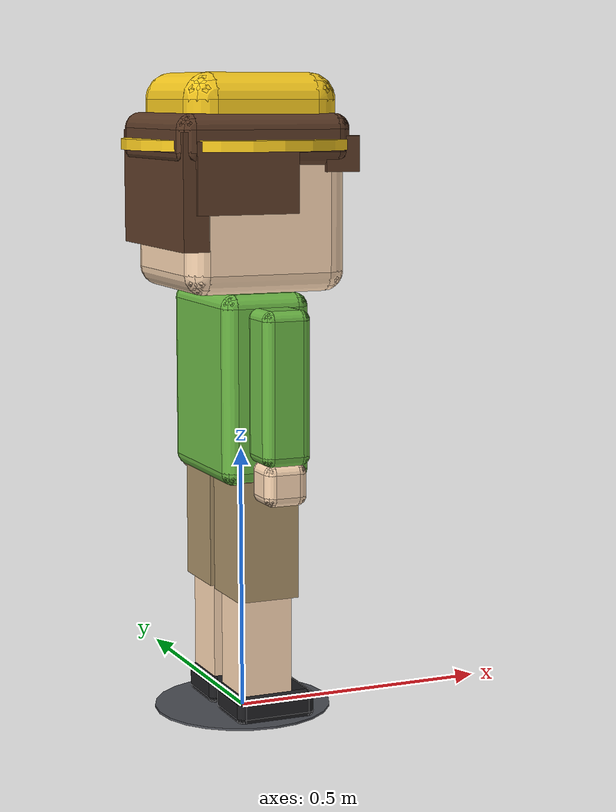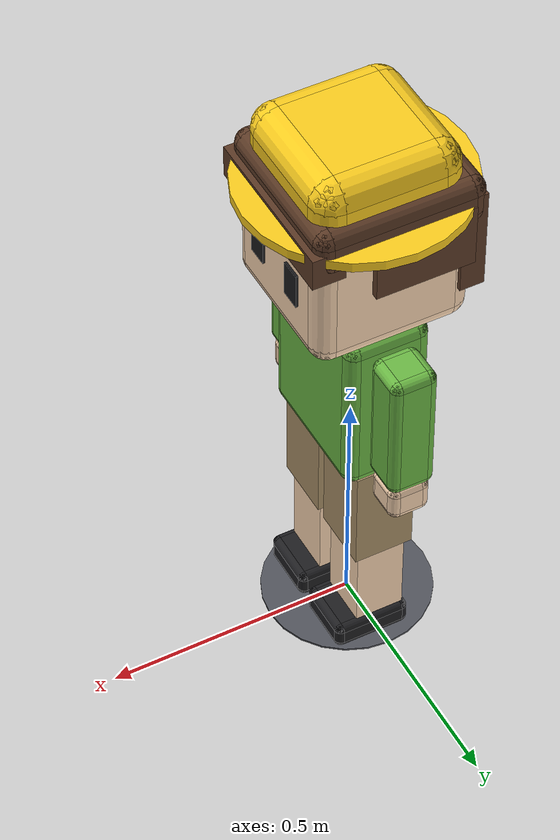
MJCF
<mujoco model="hakoniwa_person_child">
  <compiler angle="degree"/>
  <worldbody>
    <!-- 子ども: a stick that slides and turns; limbs are animated -->
    <body name="person" pos="0 0 0" gravcomp="1">
      <joint name="slide_x_joint" type="slide" axis="1 0 0" damping="20"/>
      <joint name="slide_y_joint" type="slide" axis="0 1 0" damping="20"/>
      <joint name="slide_z_joint" type="slide" axis="0 0 1"/>
      <joint name="turn_joint" type="hinge" axis="0 0 1" damping="5"/>
      <geom name="person_collision" type="capsule" fromto="0 0 0.474 0 0 0.952" size="0.154" mass="20.58" group="3" rgba="0.2 0.6 1 0"/>
      <!-- A round shadow under the feet (the stick's own part in the viewer) -->
      <geom name="shadow_visual" type="cylinder" pos="0 0 0.004" size="0.168 0.002" rgba="0.32 0.33 0.36 1" contype="0" conaffinity="0" density="0" group="1"/>
      <!-- The torso and the head are the stick's own (they do not move on it) -->
      <geom name="torso_x_visual" type="box" pos="0 0 0.63" size="0.084 0.1155 0.1505" rgba="0.42 0.72 0.27 1" contype="0" conaffinity="0" density="0" group="1"/>
      <geom name="torso_y_visual" type="box" pos="0 0 0.63" size="0.0595 0.14 0.1505" rgba="0.42 0.72 0.27 1" contype="0" conaffinity="0" density="0" group="1"/>
      <geom name="torso_z_visual" type="box" pos="0 0 0.63" size="0.0595 0.1155 0.175" rgba="0.42 0.72 0.27 1" contype="0" conaffinity="0" density="0" group="1"/>
      <geom name="torso_edge0_visual" type="capsule" fromto="-0.0595 -0.1155 0.4795 0.0595 -0.1155 0.4795" size="0.0245" rgba="0.42 0.72 0.27 1" contype="0" conaffinity="0" density="0" group="1"/>
      <geom name="torso_edge1_visual" type="capsule" fromto="-0.0595 -0.1155 0.7805 0.0595 -0.1155 0.7805" size="0.0245" rgba="0.42 0.72 0.27 1" contype="0" conaffinity="0" density="0" group="1"/>
      <geom name="torso_edge2_visual" type="capsule" fromto="-0.0595 0.1155 0.4795 0.0595 0.1155 0.4795" size="0.0245" rgba="0.42 0.72 0.27 1" contype="0" conaffinity="0" density="0" group="1"/>
      <geom name="torso_edge3_visual" type="capsule" fromto="-0.0595 0.1155 0.7805 0.0595 0.1155 0.7805" size="0.0245" rgba="0.42 0.72 0.27 1" contype="0" conaffinity="0" density="0" group="1"/>
      <geom name="torso_edge4_visual" type="capsule" fromto="-0.0595 -0.1155 0.4795 -0.0595 0.1155 0.4795" size="0.0245" rgba="0.42 0.72 0.27 1" contype="0" conaffinity="0" density="0" group="1"/>
      <geom name="torso_edge5_visual" type="capsule" fromto="-0.0595 -0.1155 0.7805 -0.0595 0.1155 0.7805" size="0.0245" rgba="0.42 0.72 0.27 1" contype="0" conaffinity="0" density="0" group="1"/>
      <geom name="torso_edge6_visual" type="capsule" fromto="0.0595 -0.1155 0.4795 0.0595 0.1155 0.4795" size="0.0245" rgba="0.42 0.72 0.27 1" contype="0" conaffinity="0" density="0" group="1"/>
      <geom name="torso_edge7_visual" type="capsule" fromto="0.0595 -0.1155 0.7805 0.0595 0.1155 0.7805" size="0.0245" rgba="0.42 0.72 0.27 1" contype="0" conaffinity="0" density="0" group="1"/>
      <geom name="torso_edge8_visual" type="capsule" fromto="-0.0595 -0.1155 0.4795 -0.0595 -0.1155 0.7805" size="0.0245" rgba="0.42 0.72 0.27 1" contype="0" conaffinity="0" density="0" group="1"/>
      <geom name="torso_edge9_visual" type="capsule" fromto="-0.0595 0.1155 0.4795 -0.0595 0.1155 0.7805" size="0.0245" rgba="0.42 0.72 0.27 1" contype="0" conaffinity="0" density="0" group="1"/>
      <geom name="torso_edge10_visual" type="capsule" fromto="0.0595 -0.1155 0.4795 0.0595 -0.1155 0.7805" size="0.0245" rgba="0.42 0.72 0.27 1" contype="0" conaffinity="0" density="0" group="1"/>
      <geom name="torso_edge11_visual" type="capsule" fromto="0.0595 0.1155 0.4795 0.0595 0.1155 0.7805" size="0.0245" rgba="0.42 0.72 0.27 1" contype="0" conaffinity="0" density="0" group="1"/>
      <geom name="head_x_visual" type="box" pos="0 0 0.951395" size="0.153395 0.117065 0.108991" rgba="0.98 0.84 0.70 1" contype="0" conaffinity="0" density="0" group="1"/>
      <geom name="head_y_visual" type="box" pos="0 0 0.951395" size="0.117065 0.153395 0.108991" rgba="0.98 0.84 0.70 1" contype="0" conaffinity="0" density="0" group="1"/>
      <geom name="head_z_visual" type="box" pos="0 0 0.951395" size="0.117065 0.117065 0.145322" rgba="0.98 0.84 0.70 1" contype="0" conaffinity="0" density="0" group="1"/>
      <geom name="head_edge0_visual" type="capsule" fromto="-0.117065 -0.117065 0.842404 0.117065 -0.117065 0.842404" size="0.0363305" rgba="0.98 0.84 0.70 1" contype="0" conaffinity="0" density="0" group="1"/>
      <geom name="head_edge1_visual" type="capsule" fromto="-0.117065 -0.117065 1.06039 0.117065 -0.117065 1.06039" size="0.0363305" rgba="0.98 0.84 0.70 1" contype="0" conaffinity="0" density="0" group="1"/>
      <geom name="head_edge2_visual" type="capsule" fromto="-0.117065 0.117065 0.842404 0.117065 0.117065 0.842404" size="0.0363305" rgba="0.98 0.84 0.70 1" contype="0" conaffinity="0" density="0" group="1"/>
      <geom name="head_edge3_visual" type="capsule" fromto="-0.117065 0.117065 1.06039 0.117065 0.117065 1.06039" size="0.0363305" rgba="0.98 0.84 0.70 1" contype="0" conaffinity="0" density="0" group="1"/>
      <geom name="head_edge4_visual" type="capsule" fromto="-0.117065 -0.117065 0.842404 -0.117065 0.117065 0.842404" size="0.0363305" rgba="0.98 0.84 0.70 1" contype="0" conaffinity="0" density="0" group="1"/>
      <geom name="head_edge5_visual" type="capsule" fromto="-0.117065 -0.117065 1.06039 -0.117065 0.117065 1.06039" size="0.0363305" rgba="0.98 0.84 0.70 1" contype="0" conaffinity="0" density="0" group="1"/>
      <geom name="head_edge6_visual" type="capsule" fromto="0.117065 -0.117065 0.842404 0.117065 0.117065 0.842404" size="0.0363305" rgba="0.98 0.84 0.70 1" contype="0" conaffinity="0" density="0" group="1"/>
      <geom name="head_edge7_visual" type="capsule" fromto="0.117065 -0.117065 1.06039 0.117065 0.117065 1.06039" size="0.0363305" rgba="0.98 0.84 0.70 1" contype="0" conaffinity="0" density="0" group="1"/>
      <geom name="head_edge8_visual" type="capsule" fromto="-0.117065 -0.117065 0.842404 -0.117065 -0.117065 1.06039" size="0.0363305" rgba="0.98 0.84 0.70 1" contype="0" conaffinity="0" density="0" group="1"/>
      <geom name="head_edge9_visual" type="capsule" fromto="-0.117065 0.117065 0.842404 -0.117065 0.117065 1.06039" size="0.0363305" rgba="0.98 0.84 0.70 1" contype="0" conaffinity="0" density="0" group="1"/>
      <geom name="head_edge10_visual" type="capsule" fromto="0.117065 -0.117065 0.842404 0.117065 -0.117065 1.06039" size="0.0363305" rgba="0.98 0.84 0.70 1" contype="0" conaffinity="0" density="0" group="1"/>
      <geom name="head_edge11_visual" type="capsule" fromto="0.117065 0.117065 0.842404 0.117065 0.117065 1.06039" size="0.0363305" rgba="0.98 0.84 0.70 1" contype="0" conaffinity="0" density="0" group="1"/>
      <geom name="eye_left_visual" type="box" pos="0.15501 0.0605508 0.943322" size="0.00322938 0.020991 0.0363305" rgba="0.10 0.10 0.11 1" contype="0" conaffinity="0" density="0" group="1"/>
      <geom name="eye_right_visual" type="box" pos="0.15501 -0.0605508 0.943322" size="0.00322938 0.020991 0.0363305" rgba="0.10 0.10 0.11 1" contype="0" conaffinity="0" density="0" group="1"/>
      <geom name="hair_top_x_visual" type="box" pos="-0.00807344 0 1.08057" size="0.165506 0.137249 0.0201836" rgba="0.36 0.23 0.15 1" contype="0" conaffinity="0" density="0" group="1"/>
      <geom name="hair_top_y_visual" type="box" pos="-0.00807344 0 1.08057" size="0.137249 0.165506 0.0201836" rgba="0.36 0.23 0.15 1" contype="0" conaffinity="0" density="0" group="1"/>
      <geom name="hair_top_z_visual" type="box" pos="-0.00807344 0 1.08057" size="0.137249 0.137249 0.0484407" rgba="0.36 0.23 0.15 1" contype="0" conaffinity="0" density="0" group="1"/>
      <geom name="hair_top_edge0_visual" type="capsule" fromto="-0.145322 -0.137249 1.06039 0.129175 -0.137249 1.06039" size="0.0282571" rgba="0.36 0.23 0.15 1" contype="0" conaffinity="0" density="0" group="1"/>
      <geom name="hair_top_edge1_visual" type="capsule" fromto="-0.145322 -0.137249 1.10075 0.129175 -0.137249 1.10075" size="0.0282571" rgba="0.36 0.23 0.15 1" contype="0" conaffinity="0" density="0" group="1"/>
      <geom name="hair_top_edge2_visual" type="capsule" fromto="-0.145322 0.137249 1.06039 0.129175 0.137249 1.06039" size="0.0282571" rgba="0.36 0.23 0.15 1" contype="0" conaffinity="0" density="0" group="1"/>
      <geom name="hair_top_edge3_visual" type="capsule" fromto="-0.145322 0.137249 1.10075 0.129175 0.137249 1.10075" size="0.0282571" rgba="0.36 0.23 0.15 1" contype="0" conaffinity="0" density="0" group="1"/>
      <geom name="hair_top_edge4_visual" type="capsule" fromto="-0.145322 -0.137249 1.06039 -0.145322 0.137249 1.06039" size="0.0282571" rgba="0.36 0.23 0.15 1" contype="0" conaffinity="0" density="0" group="1"/>
      <geom name="hair_top_edge5_visual" type="capsule" fromto="-0.145322 -0.137249 1.10075 -0.145322 0.137249 1.10075" size="0.0282571" rgba="0.36 0.23 0.15 1" contype="0" conaffinity="0" density="0" group="1"/>
      <geom name="hair_top_edge6_visual" type="capsule" fromto="0.129175 -0.137249 1.06039 0.129175 0.137249 1.06039" size="0.0282571" rgba="0.36 0.23 0.15 1" contype="0" conaffinity="0" density="0" group="1"/>
      <geom name="hair_top_edge7_visual" type="capsule" fromto="0.129175 -0.137249 1.10075 0.129175 0.137249 1.10075" size="0.0282571" rgba="0.36 0.23 0.15 1" contype="0" conaffinity="0" density="0" group="1"/>
      <geom name="hair_top_edge8_visual" type="capsule" fromto="-0.145322 -0.137249 1.06039 -0.145322 -0.137249 1.10075" size="0.0282571" rgba="0.36 0.23 0.15 1" contype="0" conaffinity="0" density="0" group="1"/>
      <geom name="hair_top_edge9_visual" type="capsule" fromto="-0.145322 0.137249 1.06039 -0.145322 0.137249 1.10075" size="0.0282571" rgba="0.36 0.23 0.15 1" contype="0" conaffinity="0" density="0" group="1"/>
      <geom name="hair_top_edge10_visual" type="capsule" fromto="0.129175 -0.137249 1.06039 0.129175 -0.137249 1.10075" size="0.0282571" rgba="0.36 0.23 0.15 1" contype="0" conaffinity="0" density="0" group="1"/>
      <geom name="hair_top_edge11_visual" type="capsule" fromto="0.129175 0.137249 1.06039 0.129175 0.137249 1.10075" size="0.0282571" rgba="0.36 0.23 0.15 1" contype="0" conaffinity="0" density="0" group="1"/>
      <geom name="hair_back_visual" type="box" pos="-0.145322 0 0.991763" size="0.0242203 0.161469 0.104955" rgba="0.36 0.23 0.15 1" contype="0" conaffinity="0" density="0" group="1"/>
      <geom name="hair_fringe_visual" type="box" pos="0.137249 0 1.05635" size="0.0322938 0.161469 0.0322938" rgba="0.36 0.23 0.15 1" contype="0" conaffinity="0" density="0" group="1"/>
      <geom name="hair_side_left_visual" type="box" pos="-0.0484407 0.153395 1.01598" size="0.0968813 0.0145322 0.0645876" rgba="0.36 0.23 0.15 1" contype="0" conaffinity="0" density="0" group="1"/>
      <geom name="hair_side_right_visual" type="box" pos="-0.0484407 -0.153395 1.01598" size="0.0968813 0.0145322 0.0645876" rgba="0.36 0.23 0.15 1" contype="0" conaffinity="0" density="0" group="1"/>
      <geom name="hat_brim_visual" type="cylinder" pos="0 0 1.0725" size="0.217983 0.00968813" rgba="0.98 0.80 0.12 1" contype="0" conaffinity="0" density="0" group="1"/>
      <geom name="hat_crown_x_visual" type="box" pos="0 0 1.13708" size="0.145322 0.0968813 0.0161469" rgba="0.98 0.80 0.12 1" contype="0" conaffinity="0" density="0" group="1"/>
      <geom name="hat_crown_y_visual" type="box" pos="0 0 1.13708" size="0.0968813 0.145322 0.0161469" rgba="0.98 0.80 0.12 1" contype="0" conaffinity="0" density="0" group="1"/>
      <geom name="hat_crown_z_visual" type="box" pos="0 0 1.13708" size="0.0968813 0.0968813 0.0645876" rgba="0.98 0.80 0.12 1" contype="0" conaffinity="0" density="0" group="1"/>
      <geom name="hat_crown_edge0_visual" type="capsule" fromto="-0.0968813 -0.0968813 1.12094 0.0968813 -0.0968813 1.12094" size="0.0484407" rgba="0.98 0.80 0.12 1" contype="0" conaffinity="0" density="0" group="1"/>
      <geom name="hat_crown_edge1_visual" type="capsule" fromto="-0.0968813 -0.0968813 1.15323 0.0968813 -0.0968813 1.15323" size="0.0484407" rgba="0.98 0.80 0.12 1" contype="0" conaffinity="0" density="0" group="1"/>
      <geom name="hat_crown_edge2_visual" type="capsule" fromto="-0.0968813 0.0968813 1.12094 0.0968813 0.0968813 1.12094" size="0.0484407" rgba="0.98 0.80 0.12 1" contype="0" conaffinity="0" density="0" group="1"/>
      <geom name="hat_crown_edge3_visual" type="capsule" fromto="-0.0968813 0.0968813 1.15323 0.0968813 0.0968813 1.15323" size="0.0484407" rgba="0.98 0.80 0.12 1" contype="0" conaffinity="0" density="0" group="1"/>
      <geom name="hat_crown_edge4_visual" type="capsule" fromto="-0.0968813 -0.0968813 1.12094 -0.0968813 0.0968813 1.12094" size="0.0484407" rgba="0.98 0.80 0.12 1" contype="0" conaffinity="0" density="0" group="1"/>
      <geom name="hat_crown_edge5_visual" type="capsule" fromto="-0.0968813 -0.0968813 1.15323 -0.0968813 0.0968813 1.15323" size="0.0484407" rgba="0.98 0.80 0.12 1" contype="0" conaffinity="0" density="0" group="1"/>
      <geom name="hat_crown_edge6_visual" type="capsule" fromto="0.0968813 -0.0968813 1.12094 0.0968813 0.0968813 1.12094" size="0.0484407" rgba="0.98 0.80 0.12 1" contype="0" conaffinity="0" density="0" group="1"/>
      <geom name="hat_crown_edge7_visual" type="capsule" fromto="0.0968813 -0.0968813 1.15323 0.0968813 0.0968813 1.15323" size="0.0484407" rgba="0.98 0.80 0.12 1" contype="0" conaffinity="0" density="0" group="1"/>
      <geom name="hat_crown_edge8_visual" type="capsule" fromto="-0.0968813 -0.0968813 1.12094 -0.0968813 -0.0968813 1.15323" size="0.0484407" rgba="0.98 0.80 0.12 1" contype="0" conaffinity="0" density="0" group="1"/>
      <geom name="hat_crown_edge9_visual" type="capsule" fromto="-0.0968813 0.0968813 1.12094 -0.0968813 0.0968813 1.15323" size="0.0484407" rgba="0.98 0.80 0.12 1" contype="0" conaffinity="0" density="0" group="1"/>
      <geom name="hat_crown_edge10_visual" type="capsule" fromto="0.0968813 -0.0968813 1.12094 0.0968813 -0.0968813 1.15323" size="0.0484407" rgba="0.98 0.80 0.12 1" contype="0" conaffinity="0" density="0" group="1"/>
      <geom name="hat_crown_edge11_visual" type="capsule" fromto="0.0968813 0.0968813 1.12094 0.0968813 0.0968813 1.15323" size="0.0484407" rgba="0.98 0.80 0.12 1" contype="0" conaffinity="0" density="0" group="1"/>
      <body name="arm_left" pos="0 0.189 0.77">
        <joint name="shoulder_left_joint" type="hinge" axis="0 1 0" range="-75 75" limited="true" stiffness="40" damping="4"/>
        <inertial pos="0 0 -0.25" mass="0.5" diaginertia="0.01 0.01 0.002"/>
        <geom name="arm_left_x_visual" type="box" pos="0 0 -0.126" size="0.0455 0.028 0.1225" rgba="0.42 0.72 0.27 1" contype="0" conaffinity="0" density="0" group="1"/>
        <geom name="arm_left_y_visual" type="box" pos="0 0 -0.126" size="0.028 0.0455 0.1225" rgba="0.42 0.72 0.27 1" contype="0" conaffinity="0" density="0" group="1"/>
        <geom name="arm_left_z_visual" type="box" pos="0 0 -0.126" size="0.028 0.028 0.14" rgba="0.42 0.72 0.27 1" contype="0" conaffinity="0" density="0" group="1"/>
        <geom name="arm_left_edge0_visual" type="capsule" fromto="-0.028 -0.028 -0.2485 0.028 -0.028 -0.2485" size="0.0175" rgba="0.42 0.72 0.27 1" contype="0" conaffinity="0" density="0" group="1"/>
        <geom name="arm_left_edge1_visual" type="capsule" fromto="-0.028 -0.028 -0.0035 0.028 -0.028 -0.0035" size="0.0175" rgba="0.42 0.72 0.27 1" contype="0" conaffinity="0" density="0" group="1"/>
        <geom name="arm_left_edge2_visual" type="capsule" fromto="-0.028 0.028 -0.2485 0.028 0.028 -0.2485" size="0.0175" rgba="0.42 0.72 0.27 1" contype="0" conaffinity="0" density="0" group="1"/>
        <geom name="arm_left_edge3_visual" type="capsule" fromto="-0.028 0.028 -0.0035 0.028 0.028 -0.0035" size="0.0175" rgba="0.42 0.72 0.27 1" contype="0" conaffinity="0" density="0" group="1"/>
        <geom name="arm_left_edge4_visual" type="capsule" fromto="-0.028 -0.028 -0.2485 -0.028 0.028 -0.2485" size="0.0175" rgba="0.42 0.72 0.27 1" contype="0" conaffinity="0" density="0" group="1"/>
        <geom name="arm_left_edge5_visual" type="capsule" fromto="-0.028 -0.028 -0.0035 -0.028 0.028 -0.0035" size="0.0175" rgba="0.42 0.72 0.27 1" contype="0" conaffinity="0" density="0" group="1"/>
        <geom name="arm_left_edge6_visual" type="capsule" fromto="0.028 -0.028 -0.2485 0.028 0.028 -0.2485" size="0.0175" rgba="0.42 0.72 0.27 1" contype="0" conaffinity="0" density="0" group="1"/>
        <geom name="arm_left_edge7_visual" type="capsule" fromto="0.028 -0.028 -0.0035 0.028 0.028 -0.0035" size="0.0175" rgba="0.42 0.72 0.27 1" contype="0" conaffinity="0" density="0" group="1"/>
        <geom name="arm_left_edge8_visual" type="capsule" fromto="-0.028 -0.028 -0.2485 -0.028 -0.028 -0.0035" size="0.0175" rgba="0.42 0.72 0.27 1" contype="0" conaffinity="0" density="0" group="1"/>
        <geom name="arm_left_edge9_visual" type="capsule" fromto="-0.028 0.028 -0.2485 -0.028 0.028 -0.0035" size="0.0175" rgba="0.42 0.72 0.27 1" contype="0" conaffinity="0" density="0" group="1"/>
        <geom name="arm_left_edge10_visual" type="capsule" fromto="0.028 -0.028 -0.2485 0.028 -0.028 -0.0035" size="0.0175" rgba="0.42 0.72 0.27 1" contype="0" conaffinity="0" density="0" group="1"/>
        <geom name="arm_left_edge11_visual" type="capsule" fromto="0.028 0.028 -0.2485 0.028 0.028 -0.0035" size="0.0175" rgba="0.42 0.72 0.27 1" contype="0" conaffinity="0" density="0" group="1"/>
        <geom name="hand_left_x_visual" type="box" pos="0 0 -0.301" size="0.0406 0.0231 0.021" rgba="0.98 0.84 0.70 1" contype="0" conaffinity="0" density="0" group="1"/>
        <geom name="hand_left_y_visual" type="box" pos="0 0 -0.301" size="0.0231 0.0406 0.021" rgba="0.98 0.84 0.70 1" contype="0" conaffinity="0" density="0" group="1"/>
        <geom name="hand_left_z_visual" type="box" pos="0 0 -0.301" size="0.0231 0.0231 0.0385" rgba="0.98 0.84 0.70 1" contype="0" conaffinity="0" density="0" group="1"/>
        <geom name="hand_left_edge0_visual" type="capsule" fromto="-0.0231 -0.0231 -0.322 0.0231 -0.0231 -0.322" size="0.0175" rgba="0.98 0.84 0.70 1" contype="0" conaffinity="0" density="0" group="1"/>
        <geom name="hand_left_edge1_visual" type="capsule" fromto="-0.0231 -0.0231 -0.28 0.0231 -0.0231 -0.28" size="0.0175" rgba="0.98 0.84 0.70 1" contype="0" conaffinity="0" density="0" group="1"/>
        <geom name="hand_left_edge2_visual" type="capsule" fromto="-0.0231 0.0231 -0.322 0.0231 0.0231 -0.322" size="0.0175" rgba="0.98 0.84 0.70 1" contype="0" conaffinity="0" density="0" group="1"/>
        <geom name="hand_left_edge3_visual" type="capsule" fromto="-0.0231 0.0231 -0.28 0.0231 0.0231 -0.28" size="0.0175" rgba="0.98 0.84 0.70 1" contype="0" conaffinity="0" density="0" group="1"/>
        <geom name="hand_left_edge4_visual" type="capsule" fromto="-0.0231 -0.0231 -0.322 -0.0231 0.0231 -0.322" size="0.0175" rgba="0.98 0.84 0.70 1" contype="0" conaffinity="0" density="0" group="1"/>
        <geom name="hand_left_edge5_visual" type="capsule" fromto="-0.0231 -0.0231 -0.28 -0.0231 0.0231 -0.28" size="0.0175" rgba="0.98 0.84 0.70 1" contype="0" conaffinity="0" density="0" group="1"/>
        <geom name="hand_left_edge6_visual" type="capsule" fromto="0.0231 -0.0231 -0.322 0.0231 0.0231 -0.322" size="0.0175" rgba="0.98 0.84 0.70 1" contype="0" conaffinity="0" density="0" group="1"/>
        <geom name="hand_left_edge7_visual" type="capsule" fromto="0.0231 -0.0231 -0.28 0.0231 0.0231 -0.28" size="0.0175" rgba="0.98 0.84 0.70 1" contype="0" conaffinity="0" density="0" group="1"/>
        <geom name="hand_left_edge8_visual" type="capsule" fromto="-0.0231 -0.0231 -0.322 -0.0231 -0.0231 -0.28" size="0.0175" rgba="0.98 0.84 0.70 1" contype="0" conaffinity="0" density="0" group="1"/>
        <geom name="hand_left_edge9_visual" type="capsule" fromto="-0.0231 0.0231 -0.322 -0.0231 0.0231 -0.28" size="0.0175" rgba="0.98 0.84 0.70 1" contype="0" conaffinity="0" density="0" group="1"/>
        <geom name="hand_left_edge10_visual" type="capsule" fromto="0.0231 -0.0231 -0.322 0.0231 -0.0231 -0.28" size="0.0175" rgba="0.98 0.84 0.70 1" contype="0" conaffinity="0" density="0" group="1"/>
        <geom name="hand_left_edge11_visual" type="capsule" fromto="0.0231 0.0231 -0.322 0.0231 0.0231 -0.28" size="0.0175" rgba="0.98 0.84 0.70 1" contype="0" conaffinity="0" density="0" group="1"/>
      </body>
      <body name="arm_right" pos="0 -0.189 0.77">
        <joint name="shoulder_right_joint" type="hinge" axis="0 1 0" range="-75 75" limited="true" stiffness="40" damping="4"/>
        <inertial pos="0 0 -0.25" mass="0.5" diaginertia="0.01 0.01 0.002"/>
        <geom name="arm_right_x_visual" type="box" pos="0 0 -0.126" size="0.0455 0.028 0.1225" rgba="0.42 0.72 0.27 1" contype="0" conaffinity="0" density="0" group="1"/>
        <geom name="arm_right_y_visual" type="box" pos="0 0 -0.126" size="0.028 0.0455 0.1225" rgba="0.42 0.72 0.27 1" contype="0" conaffinity="0" density="0" group="1"/>
        <geom name="arm_right_z_visual" type="box" pos="0 0 -0.126" size="0.028 0.028 0.14" rgba="0.42 0.72 0.27 1" contype="0" conaffinity="0" density="0" group="1"/>
        <geom name="arm_right_edge0_visual" type="capsule" fromto="-0.028 -0.028 -0.2485 0.028 -0.028 -0.2485" size="0.0175" rgba="0.42 0.72 0.27 1" contype="0" conaffinity="0" density="0" group="1"/>
        <geom name="arm_right_edge1_visual" type="capsule" fromto="-0.028 -0.028 -0.0035 0.028 -0.028 -0.0035" size="0.0175" rgba="0.42 0.72 0.27 1" contype="0" conaffinity="0" density="0" group="1"/>
        <geom name="arm_right_edge2_visual" type="capsule" fromto="-0.028 0.028 -0.2485 0.028 0.028 -0.2485" size="0.0175" rgba="0.42 0.72 0.27 1" contype="0" conaffinity="0" density="0" group="1"/>
        <geom name="arm_right_edge3_visual" type="capsule" fromto="-0.028 0.028 -0.0035 0.028 0.028 -0.0035" size="0.0175" rgba="0.42 0.72 0.27 1" contype="0" conaffinity="0" density="0" group="1"/>
        <geom name="arm_right_edge4_visual" type="capsule" fromto="-0.028 -0.028 -0.2485 -0.028 0.028 -0.2485" size="0.0175" rgba="0.42 0.72 0.27 1" contype="0" conaffinity="0" density="0" group="1"/>
        <geom name="arm_right_edge5_visual" type="capsule" fromto="-0.028 -0.028 -0.0035 -0.028 0.028 -0.0035" size="0.0175" rgba="0.42 0.72 0.27 1" contype="0" conaffinity="0" density="0" group="1"/>
        <geom name="arm_right_edge6_visual" type="capsule" fromto="0.028 -0.028 -0.2485 0.028 0.028 -0.2485" size="0.0175" rgba="0.42 0.72 0.27 1" contype="0" conaffinity="0" density="0" group="1"/>
        <geom name="arm_right_edge7_visual" type="capsule" fromto="0.028 -0.028 -0.0035 0.028 0.028 -0.0035" size="0.0175" rgba="0.42 0.72 0.27 1" contype="0" conaffinity="0" density="0" group="1"/>
        <geom name="arm_right_edge8_visual" type="capsule" fromto="-0.028 -0.028 -0.2485 -0.028 -0.028 -0.0035" size="0.0175" rgba="0.42 0.72 0.27 1" contype="0" conaffinity="0" density="0" group="1"/>
        <geom name="arm_right_edge9_visual" type="capsule" fromto="-0.028 0.028 -0.2485 -0.028 0.028 -0.0035" size="0.0175" rgba="0.42 0.72 0.27 1" contype="0" conaffinity="0" density="0" group="1"/>
        <geom name="arm_right_edge10_visual" type="capsule" fromto="0.028 -0.028 -0.2485 0.028 -0.028 -0.0035" size="0.0175" rgba="0.42 0.72 0.27 1" contype="0" conaffinity="0" density="0" group="1"/>
        <geom name="arm_right_edge11_visual" type="capsule" fromto="0.028 0.028 -0.2485 0.028 0.028 -0.0035" size="0.0175" rgba="0.42 0.72 0.27 1" contype="0" conaffinity="0" density="0" group="1"/>
        <geom name="hand_right_x_visual" type="box" pos="0 0 -0.301" size="0.0406 0.0231 0.021" rgba="0.98 0.84 0.70 1" contype="0" conaffinity="0" density="0" group="1"/>
        <geom name="hand_right_y_visual" type="box" pos="0 0 -0.301" size="0.0231 0.0406 0.021" rgba="0.98 0.84 0.70 1" contype="0" conaffinity="0" density="0" group="1"/>
        <geom name="hand_right_z_visual" type="box" pos="0 0 -0.301" size="0.0231 0.0231 0.0385" rgba="0.98 0.84 0.70 1" contype="0" conaffinity="0" density="0" group="1"/>
        <geom name="hand_right_edge0_visual" type="capsule" fromto="-0.0231 -0.0231 -0.322 0.0231 -0.0231 -0.322" size="0.0175" rgba="0.98 0.84 0.70 1" contype="0" conaffinity="0" density="0" group="1"/>
        <geom name="hand_right_edge1_visual" type="capsule" fromto="-0.0231 -0.0231 -0.28 0.0231 -0.0231 -0.28" size="0.0175" rgba="0.98 0.84 0.70 1" contype="0" conaffinity="0" density="0" group="1"/>
        <geom name="hand_right_edge2_visual" type="capsule" fromto="-0.0231 0.0231 -0.322 0.0231 0.0231 -0.322" size="0.0175" rgba="0.98 0.84 0.70 1" contype="0" conaffinity="0" density="0" group="1"/>
        <geom name="hand_right_edge3_visual" type="capsule" fromto="-0.0231 0.0231 -0.28 0.0231 0.0231 -0.28" size="0.0175" rgba="0.98 0.84 0.70 1" contype="0" conaffinity="0" density="0" group="1"/>
        <geom name="hand_right_edge4_visual" type="capsule" fromto="-0.0231 -0.0231 -0.322 -0.0231 0.0231 -0.322" size="0.0175" rgba="0.98 0.84 0.70 1" contype="0" conaffinity="0" density="0" group="1"/>
        <geom name="hand_right_edge5_visual" type="capsule" fromto="-0.0231 -0.0231 -0.28 -0.0231 0.0231 -0.28" size="0.0175" rgba="0.98 0.84 0.70 1" contype="0" conaffinity="0" density="0" group="1"/>
        <geom name="hand_right_edge6_visual" type="capsule" fromto="0.0231 -0.0231 -0.322 0.0231 0.0231 -0.322" size="0.0175" rgba="0.98 0.84 0.70 1" contype="0" conaffinity="0" density="0" group="1"/>
        <geom name="hand_right_edge7_visual" type="capsule" fromto="0.0231 -0.0231 -0.28 0.0231 0.0231 -0.28" size="0.0175" rgba="0.98 0.84 0.70 1" contype="0" conaffinity="0" density="0" group="1"/>
        <geom name="hand_right_edge8_visual" type="capsule" fromto="-0.0231 -0.0231 -0.322 -0.0231 -0.0231 -0.28" size="0.0175" rgba="0.98 0.84 0.70 1" contype="0" conaffinity="0" density="0" group="1"/>
        <geom name="hand_right_edge9_visual" type="capsule" fromto="-0.0231 0.0231 -0.322 -0.0231 0.0231 -0.28" size="0.0175" rgba="0.98 0.84 0.70 1" contype="0" conaffinity="0" density="0" group="1"/>
        <geom name="hand_right_edge10_visual" type="capsule" fromto="0.0231 -0.0231 -0.322 0.0231 -0.0231 -0.28" size="0.0175" rgba="0.98 0.84 0.70 1" contype="0" conaffinity="0" density="0" group="1"/>
        <geom name="hand_right_edge11_visual" type="capsule" fromto="0.0231 0.0231 -0.322 0.0231 0.0231 -0.28" size="0.0175" rgba="0.98 0.84 0.70 1" contype="0" conaffinity="0" density="0" group="1"/>
      </body>
      <body name="leg_left" pos="0 0.0735 0.462">
        <joint name="hip_left_joint" type="hinge" axis="0 1 0" range="-100 60" limited="true" stiffness="40" damping="4"/>
        <inertial pos="0 0 -0.25" mass="0.5" diaginertia="0.01 0.01 0.002"/>
        <geom name="thigh_left_visual" type="box" pos="0 0 -0.112" size="0.0595 0.063 0.112" rgba="0.66 0.56 0.40 1" contype="0" conaffinity="0" density="0" group="1"/>
        <body name="shin_left" pos="0 0 -0.224">
          <joint name="knee_left_joint" type="hinge" axis="0 1 0" range="0 120" limited="true" stiffness="40" damping="4"/>
          <inertial pos="0 0 -0.25" mass="0.5" diaginertia="0.01 0.01 0.002"/>
          <geom name="shin_left_visual" type="box" pos="0 0 -0.091" size="0.049 0.0525 0.091" rgba="0.98 0.84 0.70 1" contype="0" conaffinity="0" density="0" group="1"/>
          <geom name="shoe_left_x_visual" type="box" pos="0.0175 0 -0.21" size="0.077 0.049 0.014" rgba="0.12 0.12 0.13 1" contype="0" conaffinity="0" density="0" group="1"/>
          <geom name="shoe_left_y_visual" type="box" pos="0.0175 0 -0.21" size="0.063 0.063 0.014" rgba="0.12 0.12 0.13 1" contype="0" conaffinity="0" density="0" group="1"/>
          <geom name="shoe_left_z_visual" type="box" pos="0.0175 0 -0.21" size="0.063 0.049 0.028" rgba="0.12 0.12 0.13 1" contype="0" conaffinity="0" density="0" group="1"/>
          <geom name="shoe_left_edge0_visual" type="capsule" fromto="-0.0455 -0.049 -0.224 0.0805 -0.049 -0.224" size="0.014" rgba="0.12 0.12 0.13 1" contype="0" conaffinity="0" density="0" group="1"/>
          <geom name="shoe_left_edge1_visual" type="capsule" fromto="-0.0455 -0.049 -0.196 0.0805 -0.049 -0.196" size="0.014" rgba="0.12 0.12 0.13 1" contype="0" conaffinity="0" density="0" group="1"/>
          <geom name="shoe_left_edge2_visual" type="capsule" fromto="-0.0455 0.049 -0.224 0.0805 0.049 -0.224" size="0.014" rgba="0.12 0.12 0.13 1" contype="0" conaffinity="0" density="0" group="1"/>
          <geom name="shoe_left_edge3_visual" type="capsule" fromto="-0.0455 0.049 -0.196 0.0805 0.049 -0.196" size="0.014" rgba="0.12 0.12 0.13 1" contype="0" conaffinity="0" density="0" group="1"/>
          <geom name="shoe_left_edge4_visual" type="capsule" fromto="-0.0455 -0.049 -0.224 -0.0455 0.049 -0.224" size="0.014" rgba="0.12 0.12 0.13 1" contype="0" conaffinity="0" density="0" group="1"/>
          <geom name="shoe_left_edge5_visual" type="capsule" fromto="-0.0455 -0.049 -0.196 -0.0455 0.049 -0.196" size="0.014" rgba="0.12 0.12 0.13 1" contype="0" conaffinity="0" density="0" group="1"/>
          <geom name="shoe_left_edge6_visual" type="capsule" fromto="0.0805 -0.049 -0.224 0.0805 0.049 -0.224" size="0.014" rgba="0.12 0.12 0.13 1" contype="0" conaffinity="0" density="0" group="1"/>
          <geom name="shoe_left_edge7_visual" type="capsule" fromto="0.0805 -0.049 -0.196 0.0805 0.049 -0.196" size="0.014" rgba="0.12 0.12 0.13 1" contype="0" conaffinity="0" density="0" group="1"/>
          <geom name="shoe_left_edge8_visual" type="capsule" fromto="-0.0455 -0.049 -0.224 -0.0455 -0.049 -0.196" size="0.014" rgba="0.12 0.12 0.13 1" contype="0" conaffinity="0" density="0" group="1"/>
          <geom name="shoe_left_edge9_visual" type="capsule" fromto="-0.0455 0.049 -0.224 -0.0455 0.049 -0.196" size="0.014" rgba="0.12 0.12 0.13 1" contype="0" conaffinity="0" density="0" group="1"/>
          <geom name="shoe_left_edge10_visual" type="capsule" fromto="0.0805 -0.049 -0.224 0.0805 -0.049 -0.196" size="0.014" rgba="0.12 0.12 0.13 1" contype="0" conaffinity="0" density="0" group="1"/>
          <geom name="shoe_left_edge11_visual" type="capsule" fromto="0.0805 0.049 -0.224 0.0805 0.049 -0.196" size="0.014" rgba="0.12 0.12 0.13 1" contype="0" conaffinity="0" density="0" group="1"/>
        </body>
      </body>
      <body name="leg_right" pos="0 -0.0735 0.462">
        <joint name="hip_right_joint" type="hinge" axis="0 1 0" range="-100 60" limited="true" stiffness="40" damping="4"/>
        <inertial pos="0 0 -0.25" mass="0.5" diaginertia="0.01 0.01 0.002"/>
        <geom name="thigh_right_visual" type="box" pos="0 0 -0.112" size="0.0595 0.063 0.112" rgba="0.66 0.56 0.40 1" contype="0" conaffinity="0" density="0" group="1"/>
        <body name="shin_right" pos="0 0 -0.224">
          <joint name="knee_right_joint" type="hinge" axis="0 1 0" range="0 120" limited="true" stiffness="40" damping="4"/>
          <inertial pos="0 0 -0.25" mass="0.5" diaginertia="0.01 0.01 0.002"/>
          <geom name="shin_right_visual" type="box" pos="0 0 -0.091" size="0.049 0.0525 0.091" rgba="0.98 0.84 0.70 1" contype="0" conaffinity="0" density="0" group="1"/>
          <geom name="shoe_right_x_visual" type="box" pos="0.0175 0 -0.21" size="0.077 0.049 0.014" rgba="0.12 0.12 0.13 1" contype="0" conaffinity="0" density="0" group="1"/>
          <geom name="shoe_right_y_visual" type="box" pos="0.0175 0 -0.21" size="0.063 0.063 0.014" rgba="0.12 0.12 0.13 1" contype="0" conaffinity="0" density="0" group="1"/>
          <geom name="shoe_right_z_visual" type="box" pos="0.0175 0 -0.21" size="0.063 0.049 0.028" rgba="0.12 0.12 0.13 1" contype="0" conaffinity="0" density="0" group="1"/>
          <geom name="shoe_right_edge0_visual" type="capsule" fromto="-0.0455 -0.049 -0.224 0.0805 -0.049 -0.224" size="0.014" rgba="0.12 0.12 0.13 1" contype="0" conaffinity="0" density="0" group="1"/>
          <geom name="shoe_right_edge1_visual" type="capsule" fromto="-0.0455 -0.049 -0.196 0.0805 -0.049 -0.196" size="0.014" rgba="0.12 0.12 0.13 1" contype="0" conaffinity="0" density="0" group="1"/>
          <geom name="shoe_right_edge2_visual" type="capsule" fromto="-0.0455 0.049 -0.224 0.0805 0.049 -0.224" size="0.014" rgba="0.12 0.12 0.13 1" contype="0" conaffinity="0" density="0" group="1"/>
          <geom name="shoe_right_edge3_visual" type="capsule" fromto="-0.0455 0.049 -0.196 0.0805 0.049 -0.196" size="0.014" rgba="0.12 0.12 0.13 1" contype="0" conaffinity="0" density="0" group="1"/>
          <geom name="shoe_right_edge4_visual" type="capsule" fromto="-0.0455 -0.049 -0.224 -0.0455 0.049 -0.224" size="0.014" rgba="0.12 0.12 0.13 1" contype="0" conaffinity="0" density="0" group="1"/>
          <geom name="shoe_right_edge5_visual" type="capsule" fromto="-0.0455 -0.049 -0.196 -0.0455 0.049 -0.196" size="0.014" rgba="0.12 0.12 0.13 1" contype="0" conaffinity="0" density="0" group="1"/>
          <geom name="shoe_right_edge6_visual" type="capsule" fromto="0.0805 -0.049 -0.224 0.0805 0.049 -0.224" size="0.014" rgba="0.12 0.12 0.13 1" contype="0" conaffinity="0" density="0" group="1"/>
          <geom name="shoe_right_edge7_visual" type="capsule" fromto="0.0805 -0.049 -0.196 0.0805 0.049 -0.196" size="0.014" rgba="0.12 0.12 0.13 1" contype="0" conaffinity="0" density="0" group="1"/>
          <geom name="shoe_right_edge8_visual" type="capsule" fromto="-0.0455 -0.049 -0.224 -0.0455 -0.049 -0.196" size="0.014" rgba="0.12 0.12 0.13 1" contype="0" conaffinity="0" density="0" group="1"/>
          <geom name="shoe_right_edge9_visual" type="capsule" fromto="-0.0455 0.049 -0.224 -0.0455 0.049 -0.196" size="0.014" rgba="0.12 0.12 0.13 1" contype="0" conaffinity="0" density="0" group="1"/>
          <geom name="shoe_right_edge10_visual" type="capsule" fromto="0.0805 -0.049 -0.224 0.0805 -0.049 -0.196" size="0.014" rgba="0.12 0.12 0.13 1" contype="0" conaffinity="0" density="0" group="1"/>
          <geom name="shoe_right_edge11_visual" type="capsule" fromto="0.0805 0.049 -0.224 0.0805 0.049 -0.196" size="0.014" rgba="0.12 0.12 0.13 1" contype="0" conaffinity="0" density="0" group="1"/>
        </body>
      </body>
    </body>
  </worldbody>
  <actuator>
    <velocity name="move_x" joint="slide_x_joint" kv="400" ctrlrange="-3 3" forcerange="-150 150" forcelimited="true"/>
    <velocity name="move_y" joint="slide_y_joint" kv="400" ctrlrange="-3 3" forcerange="-150 150" forcelimited="true"/>
    <position name="lift" joint="slide_z_joint" kp="10290" kv="920" ctrlrange="-10 50"/>
    <velocity name="turn" joint="turn_joint" kv="60" ctrlrange="-3.14 3.14" forcerange="-40 40" forcelimited="true"/>
  </actuator>
</mujoco>
